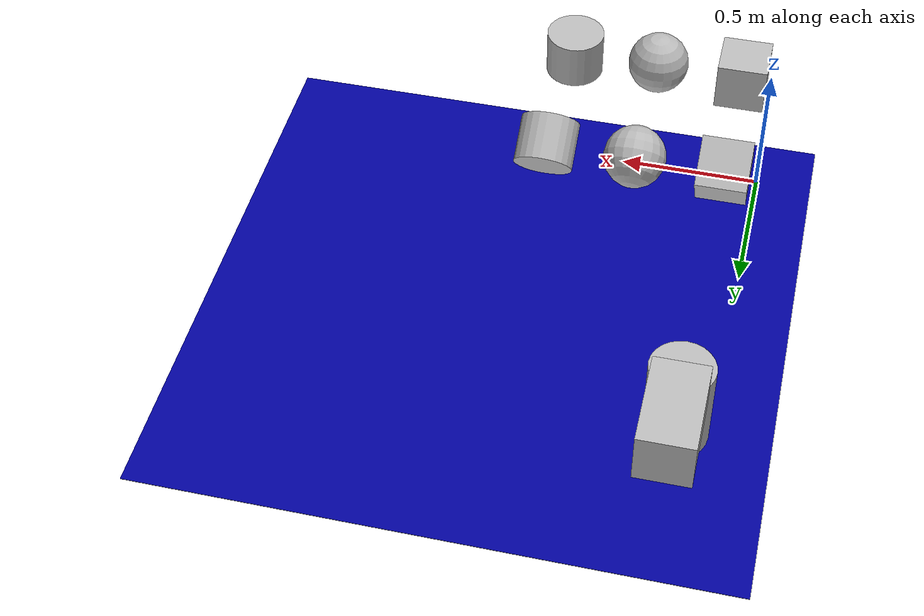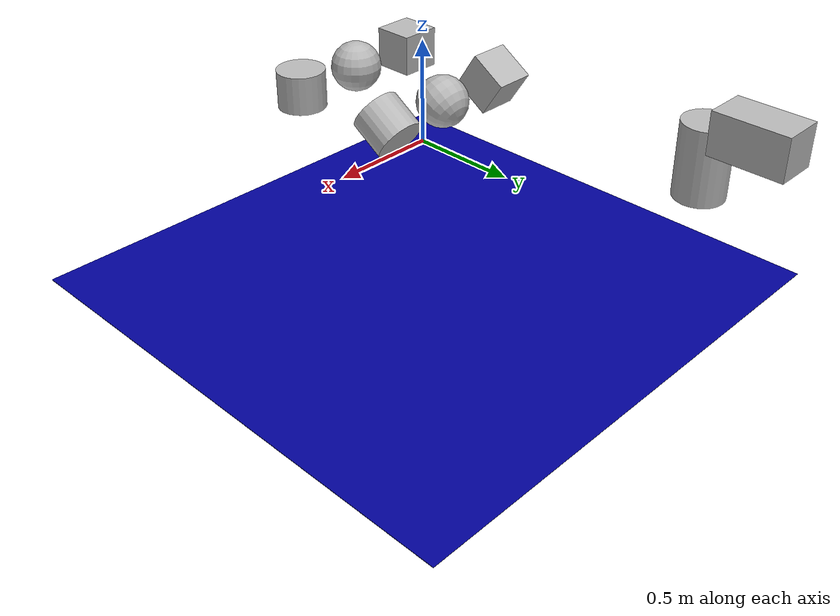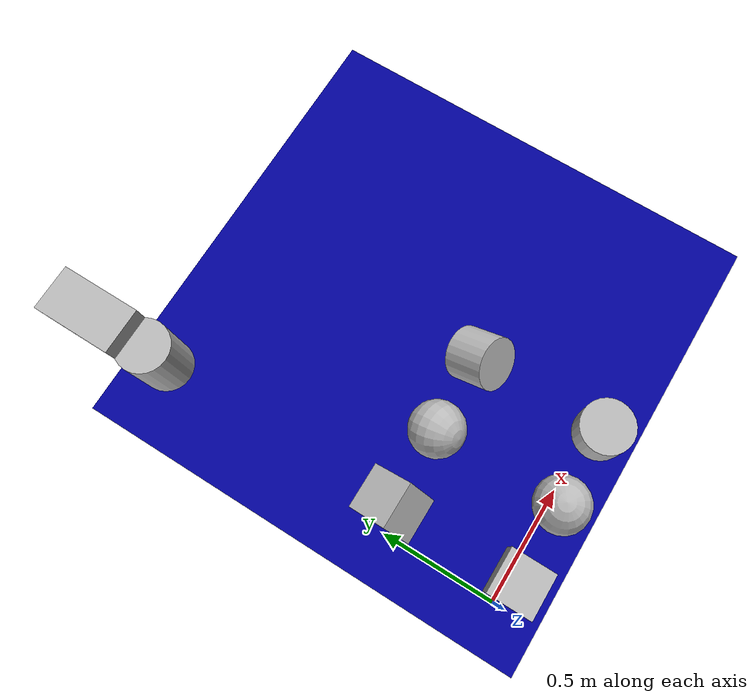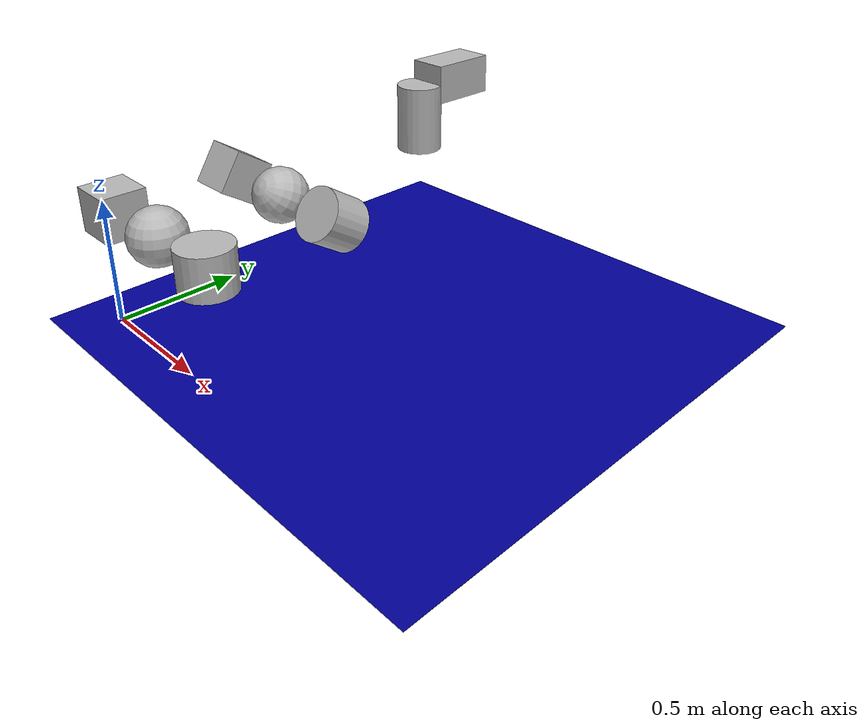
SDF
<?xml version="1.0" ?>
<!-- |    This document was autogenerated by xacro from worlds/buoyancy_plugin_demo.world.xacro | -->
<!-- |    EDITING THIS FILE BY HAND IS NOT RECOMMENDED                                 | -->
<!-- World containing buoyancy test models -->
<sdf version="1.6">
  <world name="buoyancy_test">
    <scene>
      <grid>false</grid>
      <origin_visual>false</origin_visual>
      <ambient>0.6 0.6 0.6 1</ambient>
      <background>0.8 0.8 0.8 1</background>
    </scene>
    <!-- A global light source -->
    <include>
      <uri>model://sun</uri>
    </include>
    <gui fullscreen="0">
      <camera name="user_camera">
        <pose frame="">4.84693 -4.51466 1.77033 0 0.275643 2.35619</pose>
        <view_controller>orbit</view_controller>
      </camera>
    </gui>
    <!-- water level for visual reference at z = 0-->
    <model name="plane">
      <static>true</static>
      <pose>0.8 0.8 0 0 0 0</pose>
      <link name="link">
        <visual name="visual">
          <geometry>
            <plane>
              <normal>0 0 1</normal>
              <size>2 2</size>
            </plane>
          </geometry>
          <material>
            <ambient>0.0 0.0 0.6 1</ambient>
          </material>
        </visual>
      </link>
    </model>
    <model name="1_box">
      <pose>0.1 0 0.5 0 0 0</pose>
      <static>False</static>
      <link name="link">
        <visual name="visual">
          <geometry>
            <box>
              <size>0.171 0.171 0.171</size>
            </box>
          </geometry>
        </visual>
        <collision name="collision">
          <geometry>
            <box>
              <size>0.171 0.171 0.171</size>
            </box>
          </geometry>
        </collision>
        <inertial>
          <mass>2</mass>
          <inertia>
            <ixx>0.009708012000000002</ixx>
            <ixy>0</ixy>
            <ixz>0</ixz>
            <iyy>0.009708012000000002</iyy>
            <iyz>0</iyz>
            <izz>0.009708012000000002</izz>
          </inertia>
        </inertial>
      </link>
      <plugin filename="libbuoyancy_gazebo_plugin.so" name="BuoyancyPlugin">
        <fluid_density>1000</fluid_density>
        <fluid_level>0.0</fluid_level>
        <linear_drag>10.0</linear_drag>
        <angular_drag>4.0</angular_drag>
        <buoyancy name="buoyancy">
          <link_name>link</link_name>
          <geometry>
            <box>
              <size>0.171 0.171 0.171</size>
            </box>
          </geometry>
        </buoyancy>
      </plugin>
    </model>
    <model name="1_sphere">
      <pose>0.4 0 0.5 0 0 0</pose>
      <static>False</static>
      <link name="link">
        <visual name="visual">
          <geometry>
            <sphere>
              <radius>0.106</radius>
            </sphere>
          </geometry>
        </visual>
        <collision name="collision">
          <geometry>
            <sphere>
              <radius>0.106</radius>
            </sphere>
          </geometry>
        </collision>
        <inertial>
          <mass>2</mass>
          <inertia>
            <ixx>0.0089888</ixx>
            <ixy>0</ixy>
            <ixz>0</ixz>
            <iyy>0.0089888</iyy>
            <iyz>0</iyz>
            <izz>0.0089888</izz>
          </inertia>
        </inertial>
      </link>
      <plugin filename="libbuoyancy_gazebo_plugin.so" name="BuoyancyPlugin">
        <fluid_density>1000</fluid_density>
        <fluid_level>0.0</fluid_level>
        <linear_drag>10.0</linear_drag>
        <angular_drag>4.0</angular_drag>
        <buoyancy name="buoyancy">
          <link_name>link</link_name>
          <geometry>
            <sphere>
              <radius>0.106</radius>
            </sphere>
          </geometry>
        </buoyancy>
      </plugin>
    </model>
    <model name="1_cylinder">
      <pose>0.7 0 0.5 0 0 0</pose>
      <static>False</static>
      <link name="link">
        <visual name="visual">
          <geometry>
            <cylinder>
              <radius>0.1</radius>
              <length>0.159</length>
            </cylinder>
          </geometry>
        </visual>
        <collision name="collision">
          <geometry>
            <cylinder>
              <radius>0.1</radius>
              <length>0.159</length>
            </cylinder>
          </geometry>
        </collision>
        <inertial>
          <mass>2</mass>
          <inertia>
            <ixx>0.009213496314600002</ixx>
            <ixy>0</ixy>
            <ixz>0</ixz>
            <iyy>0.009213496314600002</iyy>
            <iyz>0</iyz>
            <izz>0.010000000000000002</izz>
          </inertia>
        </inertial>
      </link>
      <plugin filename="libbuoyancy_gazebo_plugin.so" name="BuoyancyPlugin">
        <fluid_density>1000</fluid_density>
        <fluid_level>0.0</fluid_level>
        <linear_drag>10.0</linear_drag>
        <angular_drag>4.0</angular_drag>
        <buoyancy name="buoyancy">
          <link_name>link</link_name>
          <geometry>
            <cylinder>
              <radius>0.1</radius>
              <length>0.159</length>
            </cylinder>
          </geometry>
        </buoyancy>
      </plugin>
    </model>
    <model name="2_box">
      <pose>0.1 0.5 0.5 1.0 0 0</pose>
      <static>False</static>
      <link name="link">
        <visual name="visual">
          <geometry>
            <box>
              <size>0.171 0.171 0.171</size>
            </box>
          </geometry>
        </visual>
        <collision name="collision">
          <geometry>
            <box>
              <size>0.171 0.171 0.171</size>
            </box>
          </geometry>
        </collision>
        <inertial>
          <mass>2</mass>
          <inertia>
            <ixx>0.009708012000000002</ixx>
            <ixy>0</ixy>
            <ixz>0</ixz>
            <iyy>0.009708012000000002</iyy>
            <iyz>0</iyz>
            <izz>0.009708012000000002</izz>
          </inertia>
        </inertial>
      </link>
      <plugin filename="libbuoyancy_gazebo_plugin.so" name="BuoyancyPlugin">
        <fluid_density>1000</fluid_density>
        <fluid_level>0.0</fluid_level>
        <linear_drag>10.0</linear_drag>
        <angular_drag>4.0</angular_drag>
        <buoyancy name="buoyancy">
          <link_name>link</link_name>
          <geometry>
            <box>
              <size>0.171 0.171 0.171</size>
            </box>
          </geometry>
        </buoyancy>
      </plugin>
    </model>
    <model name="2_sphere">
      <pose>0.4 0.5 0.5 1.0 0 0</pose>
      <static>False</static>
      <link name="link">
        <visual name="visual">
          <geometry>
            <sphere>
              <radius>0.106</radius>
            </sphere>
          </geometry>
        </visual>
        <collision name="collision">
          <geometry>
            <sphere>
              <radius>0.106</radius>
            </sphere>
          </geometry>
        </collision>
        <inertial>
          <mass>2</mass>
          <inertia>
            <ixx>0.0089888</ixx>
            <ixy>0</ixy>
            <ixz>0</ixz>
            <iyy>0.0089888</iyy>
            <iyz>0</iyz>
            <izz>0.0089888</izz>
          </inertia>
        </inertial>
      </link>
      <plugin filename="libbuoyancy_gazebo_plugin.so" name="BuoyancyPlugin">
        <fluid_density>1000</fluid_density>
        <fluid_level>0.0</fluid_level>
        <linear_drag>10.0</linear_drag>
        <angular_drag>4.0</angular_drag>
        <buoyancy name="buoyancy">
          <link_name>link</link_name>
          <geometry>
            <sphere>
              <radius>0.106</radius>
            </sphere>
          </geometry>
        </buoyancy>
      </plugin>
    </model>
    <model name="2_cylinder">
      <pose>0.7 0.5 0.5 1.0 0 0</pose>
      <static>False</static>
      <link name="link">
        <visual name="visual">
          <geometry>
            <cylinder>
              <radius>0.1</radius>
              <length>0.159</length>
            </cylinder>
          </geometry>
        </visual>
        <collision name="collision">
          <geometry>
            <cylinder>
              <radius>0.1</radius>
              <length>0.159</length>
            </cylinder>
          </geometry>
        </collision>
        <inertial>
          <mass>2</mass>
          <inertia>
            <ixx>0.009213496314600002</ixx>
            <ixy>0</ixy>
            <ixz>0</ixz>
            <iyy>0.009213496314600002</iyy>
            <iyz>0</iyz>
            <izz>0.010000000000000002</izz>
          </inertia>
        </inertial>
      </link>
      <plugin filename="libbuoyancy_gazebo_plugin.so" name="BuoyancyPlugin">
        <fluid_density>1000</fluid_density>
        <fluid_level>0.0</fluid_level>
        <linear_drag>10.0</linear_drag>
        <angular_drag>4.0</angular_drag>
        <buoyancy name="buoyancy">
          <link_name>link</link_name>
          <geometry>
            <cylinder>
              <radius>0.1</radius>
              <length>0.159</length>
            </cylinder>
          </geometry>
        </buoyancy>
      </plugin>
    </model>
    <model name="3_box">
      <pose>0.1 1.0 -0.5 1.0 0 0</pose>
      <static>False</static>
      <link name="link">
        <visual name="visual">
          <geometry>
            <box>
              <size>0.171 0.171 0.171</size>
            </box>
          </geometry>
        </visual>
        <collision name="collision">
          <geometry>
            <box>
              <size>0.171 0.171 0.171</size>
            </box>
          </geometry>
        </collision>
        <inertial>
          <mass>2</mass>
          <inertia>
            <ixx>0.009708012000000002</ixx>
            <ixy>0</ixy>
            <ixz>0</ixz>
            <iyy>0.009708012000000002</iyy>
            <iyz>0</iyz>
            <izz>0.009708012000000002</izz>
          </inertia>
        </inertial>
      </link>
      <plugin filename="libbuoyancy_gazebo_plugin.so" name="BuoyancyPlugin">
        <fluid_density>1000</fluid_density>
        <fluid_level>0.0</fluid_level>
        <linear_drag>10.0</linear_drag>
        <angular_drag>4.0</angular_drag>
        <buoyancy name="buoyancy">
          <link_name>link</link_name>
          <geometry>
            <box>
              <size>0.171 0.171 0.171</size>
            </box>
          </geometry>
        </buoyancy>
      </plugin>
    </model>
    <model name="3_sphere">
      <pose>0.4 1.0 -0.5 1.0 0 0</pose>
      <static>False</static>
      <link name="link">
        <visual name="visual">
          <geometry>
            <sphere>
              <radius>0.106</radius>
            </sphere>
          </geometry>
        </visual>
        <collision name="collision">
          <geometry>
            <sphere>
              <radius>0.106</radius>
            </sphere>
          </geometry>
        </collision>
        <inertial>
          <mass>2</mass>
          <inertia>
            <ixx>0.0089888</ixx>
            <ixy>0</ixy>
            <ixz>0</ixz>
            <iyy>0.0089888</iyy>
            <iyz>0</iyz>
            <izz>0.0089888</izz>
          </inertia>
        </inertial>
      </link>
      <plugin filename="libbuoyancy_gazebo_plugin.so" name="BuoyancyPlugin">
        <fluid_density>1000</fluid_density>
        <fluid_level>0.0</fluid_level>
        <linear_drag>10.0</linear_drag>
        <angular_drag>4.0</angular_drag>
        <buoyancy name="buoyancy">
          <link_name>link</link_name>
          <geometry>
            <sphere>
              <radius>0.106</radius>
            </sphere>
          </geometry>
        </buoyancy>
      </plugin>
    </model>
    <model name="3_cylinder">
      <pose>0.7 1.0 -0.5 1.0 0 0</pose>
      <static>False</static>
      <link name="link">
        <visual name="visual">
          <geometry>
            <cylinder>
              <radius>0.1</radius>
              <length>0.159</length>
            </cylinder>
          </geometry>
        </visual>
        <collision name="collision">
          <geometry>
            <cylinder>
              <radius>0.1</radius>
              <length>0.159</length>
            </cylinder>
          </geometry>
        </collision>
        <inertial>
          <mass>2</mass>
          <inertia>
            <ixx>0.009213496314600002</ixx>
            <ixy>0</ixy>
            <ixz>0</ixz>
            <iyy>0.009213496314600002</iyy>
            <iyz>0</iyz>
            <izz>0.010000000000000002</izz>
          </inertia>
        </inertial>
      </link>
      <plugin filename="libbuoyancy_gazebo_plugin.so" name="BuoyancyPlugin">
        <fluid_density>1000</fluid_density>
        <fluid_level>0.0</fluid_level>
        <linear_drag>10.0</linear_drag>
        <angular_drag>4.0</angular_drag>
        <buoyancy name="buoyancy">
          <link_name>link</link_name>
          <geometry>
            <cylinder>
              <radius>0.1</radius>
              <length>0.159</length>
            </cylinder>
          </geometry>
        </buoyancy>
      </plugin>
    </model>
    <!-- test_4: complex object -->
    <model name="4_complex">
      <pose>0.1 1.5 0.5 0 0 0</pose>
      <link name="link_cylinder">
        <visual name="visual">
          <geometry>
            <cylinder>
              <radius>0.1</radius>
              <length>0.3</length>
            </cylinder>
          </geometry>
        </visual>
        <collision name="collision">
          <geometry>
            <cylinder>
              <radius>0.1</radius>
              <length>0.3</length>
            </cylinder>
          </geometry>
        </collision>
        <inertial>
          <mass>5</mass>
          <inertia>
            <ixx>0.04999998</ixx>
            <ixy>0</ixy>
            <ixz>0</ixz>
            <iyy>0.04999998</iyy>
            <iyz>0</iyz>
            <izz>0.025</izz>
          </inertia>
        </inertial>
      </link>
      <link name="link_box">
        <pose>0 0.2 0.15 0 0 0</pose>
        <visual name="visual">
          <geometry>
            <box>
              <size>0.171 0.3 0.171</size>
            </box>
          </geometry>
        </visual>
        <collision name="collision">
          <geometry>
            <box>
              <size>0.171 0.3 0.171</size>
            </box>
          </geometry>
        </collision>
        <inertial>
          <mass>10</mass>
          <inertia>
            <ixx>0.09897003000000001</ixx>
            <ixy>0</ixy>
            <ixz>0</ixz>
            <iyy>0.04854006000000001</iyy>
            <iyz>0</iyz>
            <izz>0.09897003000000001</izz>
          </inertia>
        </inertial>
      </link>
      <joint name="joint" type="fixed">
        <parent>link_box</parent>
        <child>link_cylinder</child>
      </joint>
      <plugin filename="libbuoyancy_gazebo_plugin.so" name="BuoyancyPlugin">
        <fluid_density>1000</fluid_density>
        <fluid_level>0.0</fluid_level>
        <linear_drag>5.0</linear_drag>
        <angular_drag>2.0</angular_drag>
        <buoyancy name="buoyancy_cylinder">
          <link_name>link_cylinder</link_name>
          <geometry>
            <cylinder>
              <radius>0.1</radius>
              <length>0.3</length>
            </cylinder>
          </geometry>
        </buoyancy>
        <buoyancy name="buoyancy_box">
          <link_name>link_box</link_name>
          <geometry>
            <box>
              <size>0.171 0.3 0.171</size>
            </box>
          </geometry>
        </buoyancy>
      </plugin>
    </model>
  </world>
</sdf>
